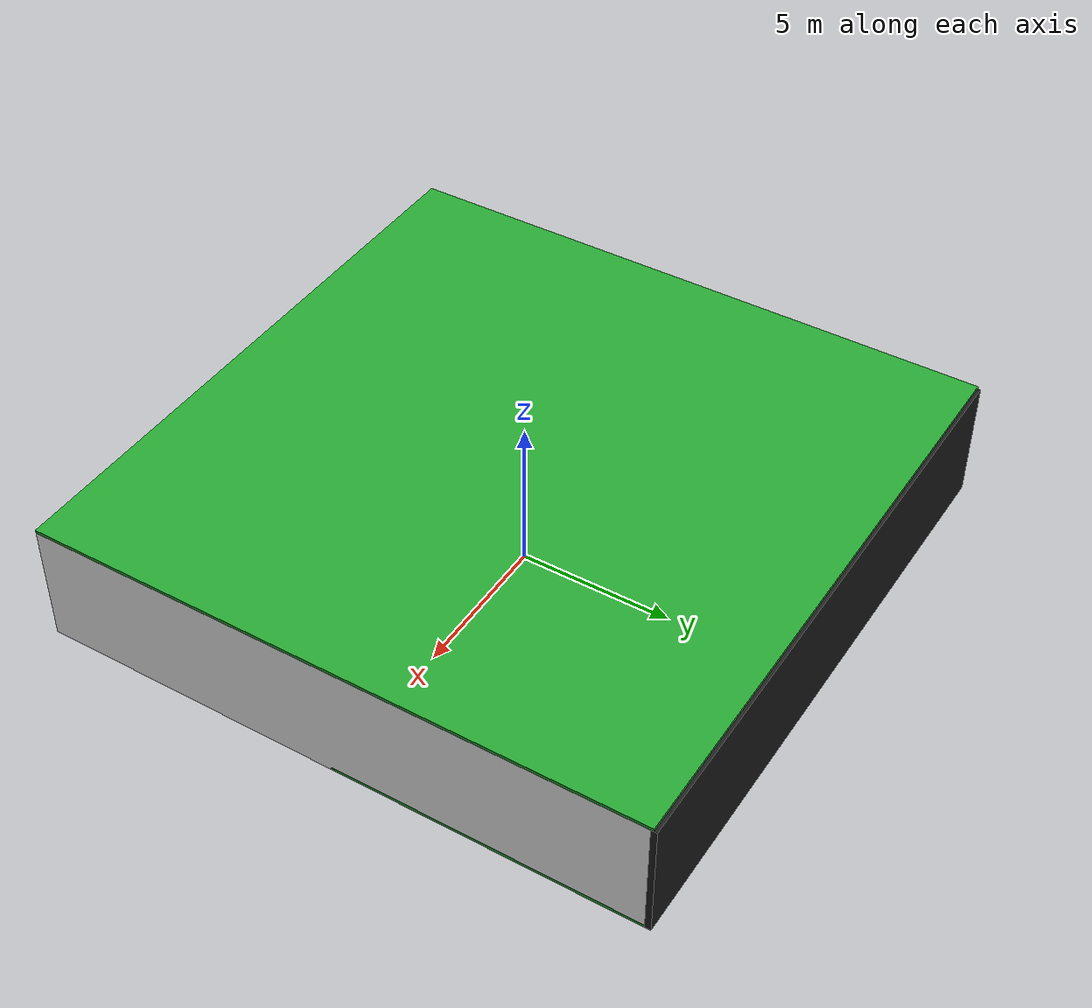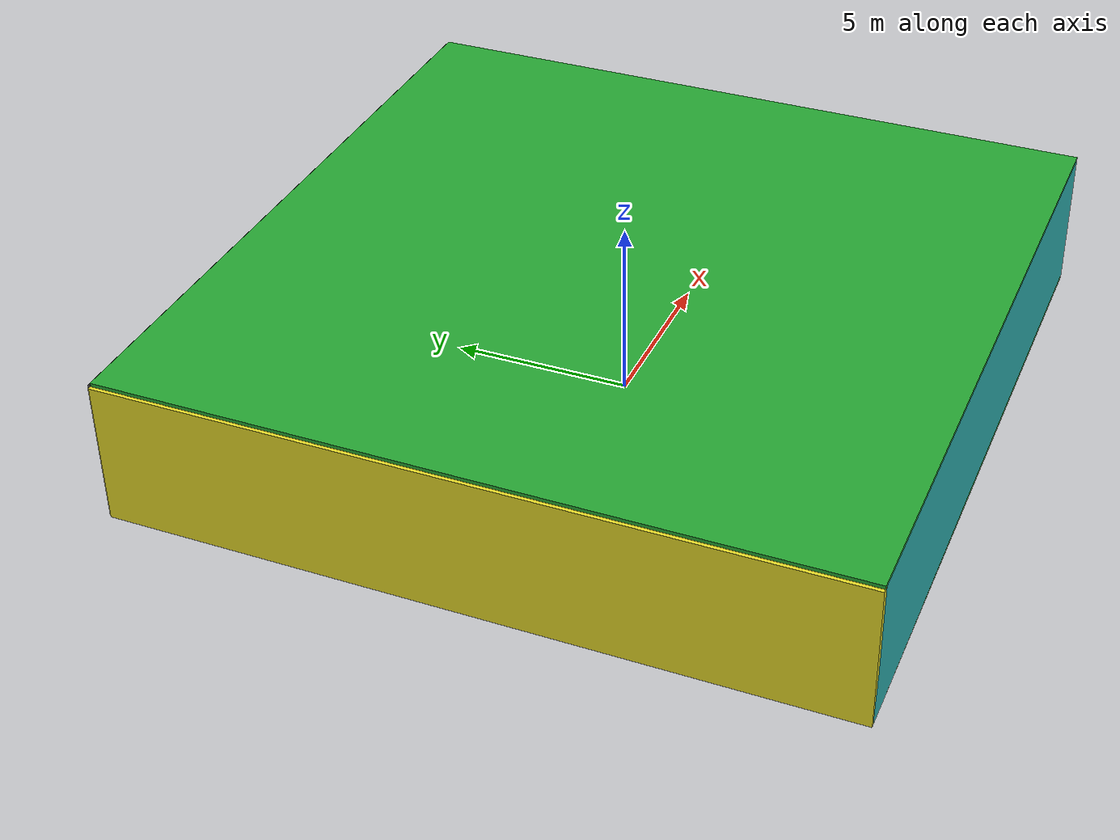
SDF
<sdf version="1.4">
 <world name="default">
  <physics type="ode">
   <max_step_size>0.001</max_step_size>
   <real_time_factor>1</real_time_factor>
   <real_time_update_rate>1000</real_time_update_rate>
   <gravity>0 0 -9.8</gravity>
  </physics>
  <scene><ambient>0.4 0.4 0.4 1</ambient><background>0.7 0.7 0.7 1</background><shadows>1</shadows></scene>
  <model name="Surrounding">
   <static>1</static>
   <link name="Ceiling">
    <collision name="Ceiling_Collision"><geometry><box><size>20 20 0.1</size></box></geometry></collision>
    <visual name="Ceiling_Visual">
     <geometry><box><size>20 20 0.1</size></box></geometry>
     <material>
      <script><uri>file://media/materials/scripts/gazebo.material</uri><name>Gazebo/GreenGlow</name></script>
     </material>
    </visual>
    <pose>0 0 4.05 0 0 0</pose>
   </link>
   <link name="Wall_South">
    <collision name="Wall_South_Collision">
     <geometry><box><size>20 0 4</size></box></geometry>
     <pose>0 0 2 0 -0 0</pose>
    </collision>
    <visual name="Wall_South_Visual">
     <pose>0 0 2 0 -0 0</pose>
     <geometry><box><size>20 0 4</size></box></geometry>
     <material>
      <script>
       <uri>file://media/materials/scripts/gazebo.material</uri>
       <name>Gazebo/TurquoiseGlowOutline</name>
      </script>
     </material>
    </visual>
    <velocity_decay><linear>0</linear><angular>0</angular></velocity_decay>
    <pose>0 -10 0 0 -0 0</pose>
   </link>
   <link name="Wall_East">
    <collision name="Wall_21_Collision">
     <geometry><box><size>20 0 4</size></box></geometry>
     <pose>0 0 2 0 -0 0</pose>
    </collision>
    <visual name="Wall_21_Visual">
     <pose>0 0 2 0 -0 0</pose>
     <geometry><box><size>20 0 4</size></box></geometry>
     <material>
      <script><uri>file://media/materials/scripts/gazebo.material</uri><name>Gazebo/WhiteGlow</name></script>
     </material>
    </visual>
    <velocity_decay><linear>0</linear><angular>0</angular></velocity_decay>
    <pose>10 0 0 0 -0 1.5708</pose>
   </link>
   <link name="Wall_North">
    <collision name="Wall_22_Collision">
     <geometry><box><size>20 0.2 4</size></box></geometry>
     <pose>0 0 2 0 -0 0</pose>
    </collision>
    <visual name="Wall_22_Visual">
     <pose>0 0 2 0 -0 0</pose>
     <geometry><box><size>20 0.2 4</size></box></geometry>
     <material>
      <script><uri>file://media/materials/scripts/gazebo.material</uri><name>Gazebo/FlatBlack</name></script>
     </material>
    </visual>
    <velocity_decay><linear>0</linear><angular>0</angular></velocity_decay>
    <pose>0 10 0 0 -0 0</pose>
   </link>
   <link name="Wall_West">
    <collision name="Wall_23_Collision">
     <geometry><box><size>20 0.2 4</size></box></geometry>
     <pose>0 0 2 0 -0 0</pose>
    </collision>
    <visual name="Wall_23_Visual">
     <pose>0 0 2 0 -0 0</pose>
     <geometry><box><size>20 0.2 4</size></box></geometry>
     <material>
      <script><uri>file://media/materials/scripts/gazebo.material</uri><name>Gazebo/YellowGlow</name></script>
     </material>
    </visual>
    <velocity_decay><linear>0</linear><angular>0</angular></velocity_decay>
    <pose>-10 0 0 0 0 -1.5708</pose>
   </link>
   <link name="Ground_link">
    <collision name="collision">
     <pose>0 0 .05 0 -0 0</pose>
     <geometry><box><size>20 20 0.1</size></box></geometry>
    </collision>
    <visual name="visual">
     <pose>0 0 .05 0 -0 0</pose>
     <geometry><box><size>20 20 0.1</size></box></geometry>
     <material>
      <script><uri>file://media/materials/scripts/gazebo.material</uri><name>Gazebo/GreenGlow</name></script>
     </material>
    </visual>
   </link>
   <static>1</static>
  </model>
  <spherical_coordinates>
   <surface_model>EARTH_WGS84</surface_model>
   <latitude_deg>0</latitude_deg>
   <longitude_deg>0</longitude_deg>
   <elevation>0</elevation>
   <heading_deg>0</heading_deg>
  </spherical_coordinates>
  <light name="lightball_0" type="diffuse">
   <diffuse>0.8 0.8 0.8 1</diffuse>
   <specular>0.2 0.2 0.2 1</specular>
   <attenuation>
    <range>100</range>
    <constant>0.7</constant>
    <linear>0.01</linear>
    <quadratic>0.001</quadratic>
   </attenuation>
   <direction>-0.5 0.1 -0.9</direction>
   <pose>7.17560349974 0.978050554071 1.86910059937 0 0 0</pose>
  </light>
  <light name="lightball_1" type="diffuse">
   <diffuse>0.8 0.8 0.8 1</diffuse>
   <specular>0.2 0.2 0.2 1</specular>
   <attenuation>
    <range>100</range>
    <constant>0.7</constant>
    <linear>0.01</linear>
    <quadratic>0.001</quadratic>
   </attenuation>
   <direction>-0.5 0.1 -0.9</direction>
   <pose>-0.853186014962 -5.44068626955 3.6104795693 0 0 0</pose>
  </light>
  <light name="lightball_2" type="diffuse">
   <diffuse>0.8 0.8 0.8 1</diffuse>
   <specular>0.2 0.2 0.2 1</specular>
   <attenuation>
    <range>100</range>
    <constant>0.7</constant>
    <linear>0.01</linear>
    <quadratic>0.001</quadratic>
   </attenuation>
   <direction>-0.5 0.1 -0.9</direction>
   <pose>-4.29874901024 6.30207562886 0.866871358363 0 0 0</pose>
  </light>
  <light name="lightball_3" type="diffuse">
   <diffuse>0.8 0.8 0.8 1</diffuse>
   <specular>0.2 0.2 0.2 1</specular>
   <attenuation>
    <range>100</range>
    <constant>0.7</constant>
    <linear>0.01</linear>
    <quadratic>0.001</quadratic>
   </attenuation>
   <direction>-0.5 0.1 -0.9</direction>
   <pose>4.77597902048 -0.499104803174 2.80812552945 0 0 0</pose>
  </light>
  <light name="lightball_4" type="diffuse">
   <diffuse>0.8 0.8 0.8 1</diffuse>
   <specular>0.2 0.2 0.2 1</specular>
   <attenuation>
    <range>100</range>
    <constant>0.7</constant>
    <linear>0.01</linear>
    <quadratic>0.001</quadratic>
   </attenuation>
   <direction>-0.5 0.1 -0.9</direction>
   <pose>-8.24093911704 -4.31546608553 3.85100647319 0 0 0</pose>
  </light>
  <light name="lightball_5" type="diffuse">
   <diffuse>0.8 0.8 0.8 1</diffuse>
   <specular>0.2 0.2 0.2 1</specular>
   <attenuation>
    <range>100</range>
    <constant>0.7</constant>
    <linear>0.01</linear>
    <quadratic>0.001</quadratic>
   </attenuation>
   <direction>-0.5 0.1 -0.9</direction>
   <pose>7.02869451344 9.92754924671 2.60607456742 0 0 0</pose>
  </light>
  <light name="lightball_6" type="diffuse">
   <diffuse>0.8 0.8 0.8 1</diffuse>
   <specular>0.2 0.2 0.2 1</specular>
   <attenuation>
    <range>100</range>
    <constant>0.7</constant>
    <linear>0.01</linear>
    <quadratic>0.001</quadratic>
   </attenuation>
   <direction>-0.5 0.1 -0.9</direction>
   <pose>-9.09051842471 0.69846526377 0.503232007743 0 0 0</pose>
  </light>
  <light name="lightball_7" type="diffuse">
   <diffuse>0.8 0.8 0.8 1</diffuse>
   <specular>0.2 0.2 0.2 1</specular>
   <attenuation>
    <range>100</range>
    <constant>0.7</constant>
    <linear>0.01</linear>
    <quadratic>0.001</quadratic>
   </attenuation>
   <direction>-0.5 0.1 -0.9</direction>
   <pose>4.28887223516 -2.42167235491 1.4799683065 0 0 0</pose>
  </light>
  <light name="lightball_8" type="diffuse">
   <diffuse>0.8 0.8 0.8 1</diffuse>
   <specular>0.2 0.2 0.2 1</specular>
   <attenuation>
    <range>100</range>
    <constant>0.7</constant>
    <linear>0.01</linear>
    <quadratic>0.001</quadratic>
   </attenuation>
   <direction>-0.5 0.1 -0.9</direction>
   <pose>1.23725429242 -2.58813550629 2.84846810279 0 0 0</pose>
  </light>
  <light name="lightball_9" type="diffuse">
   <diffuse>0.8 0.8 0.8 1</diffuse>
   <specular>0.2 0.2 0.2 1</specular>
   <attenuation>
    <range>100</range>
    <constant>0.7</constant>
    <linear>0.01</linear>
    <quadratic>0.001</quadratic>
   </attenuation>
   <direction>-0.5 0.1 -0.9</direction>
   <pose>-3.89384309298 -3.9480925197 1.14121538683 0 0 0</pose>
  </light>
  <include><uri>model://cabinet</uri><pose>-7.24246153368 -4.46791692592 0 0 0 1.68162556683</pose></include>
  <include><uri>model://table</uri><pose>-7.53753398124 1.55981582533 0 0 0 1.56642748536</pose></include>
  <include>
   <uri>model://construction_cone</uri>
   <pose>-1.32991752236 -6.72246990768 0 0 0 0.646831013311</pose>
  </include>
  <include><uri>model://cabinet</uri><pose>-1.51332112261 -4.40656208509 0 0 0 2.97888471749</pose></include>
  <include><uri>model://cabinet</uri><pose>1.05848830423 -4.37674342019 0 0 0 0.88068018203</pose></include>
  <include>
   <uri>model://textured_shapes</uri>
   <pose>4.24424240715 -1.93507316499 0 0 0 1.28481021514</pose>
  </include>
  <include><uri>model://table</uri><pose>4.81782194725 4.47614757335 0 0 0 3.08579795033</pose></include>
  <include><uri>model://cabinet</uri><pose>6.93257328433 7.61200569179 0 0 0 2.28457934174</pose></include>
 </world>
</sdf>

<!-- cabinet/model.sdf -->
<sdf version="1.5">
  <model name="cabinet">
    <static>true</static>
    <link name="cabinet_bottom_plate">
      <inertial>
        <pose>0 0 -1 0 0 0</pose>
        <inertia>
          <ixx>2.050000</ixx>
          <ixy>0</ixy>
          <ixz>0</ixz>
          <iyy>2.050000</iyy>
          <iyz>0</iyz>
          <izz>2.050000</izz>
        </inertia>
        <mass>25.000000</mass>
      </inertial>
      <collision name="cabinet_bottom_plate_geom">
        <pose>0 0 0.010000 0 0 0</pose>
        <geometry>
          <box>
            <size>0.450000 0.450000 0.020000</size>
          </box>
        </geometry>
      </collision>
      <visual name="cabinet_bottom_plate_geom_visual">
        <pose>0 0 0.010000 0 0 0</pose>
        <geometry>
          <box>
            <size>0.450000 0.450000 0.020000</size>
          </box>
        </geometry>
        <material>
          <script>
            <uri>model://media/materials/scripts/gazebo.material</uri>
            <name>Gazebo/Wood</name>
          </script>
        </material>
      </visual>
      <collision name="cabinet_bottom_plate_geom_cabinet_back_plate">
        <pose>0.235000 0 0.510000 0 0 0</pose>
        <geometry>
          <box>
            <size>0.020000 0.450000 1.020000</size>
          </box>
        </geometry>
      </collision>
      <visual name="cabinet_bottom_plate_geom_cabinet_back_plate_visual">
        <pose>0.235000 0 0.510000 0 0 0</pose>
        <geometry>
          <box>
            <size>0.020000 0.450000 1.020000</size>
          </box>
        </geometry>
        <material>
          <script>
            <uri>model://media/materials/scripts/gazebo.material</uri>
            <name>Gazebo/Wood</name>
          </script>
        </material>
      </visual>
      <collision name="cabinet_bottom_plate_geom_cabinet_left_plate">
        <pose>0 0.235000 0.510000 0 0 0</pose>
        <geometry>
          <box>
            <size>0.450000 0.020000 1.020000</size>
          </box>
        </geometry>
      </collision>
      <visual name="cabinet_bottom_plate_geom_cabinet_left_plate_visual">
        <pose>0 0.235000 0.510000 0 0 0</pose>
        <geometry>
          <box>
            <size>0.450000 0.020000 1.020000</size>
          </box>
        </geometry>
        <material>
          <script>
            <uri>model://media/materials/scripts/gazebo.material</uri>
            <name>Gazebo/Wood</name>
          </script>
        </material>
      </visual>
      <collision name="cabinet_bottom_plate_geom_cabinet_middle_plate">
        <pose>0 0 0.510000 0 0 0</pose>
        <geometry>
          <box>
            <size>0.450000 0.450000 0.020000</size>
          </box>
        </geometry>
      </collision>
      <visual name="cabinet_bottom_plate_geom_cabinet_middle_plate_visual">
        <pose>0 0 0.510000 0 0 0</pose>
        <geometry>
          <box>
            <size>0.450000 0.450000 0.020000</size>
          </box>
        </geometry>
        <material>
          <script>
            <uri>model://media/materials/scripts/gazebo.material</uri>
            <name>Gazebo/Wood</name>
          </script>
        </material>
      </visual>
      <collision name="cabinet_bottom_plate_geom_cabinet_right_plate">
        <pose>0 -0.235000 0.510000 0 0 0</pose>
        <geometry>
          <box>
            <size>0.450000 0.020000 1.020000</size>
          </box>
        </geometry>
      </collision>
      <visual name="cabinet_bottom_plate_geom_cabinet_right_plate_visual">
        <pose>0 -0.235000 0.510000 0 0 0</pose>
        <geometry>
          <box>
            <size>0.450000 0.020000 1.020000</size>
          </box>
        </geometry>
        <material>
          <script>
            <uri>model://media/materials/scripts/gazebo.material</uri>
            <name>Gazebo/Wood</name>
          </script>
        </material>
      </visual>
      <collision name="cabinet_bottom_plate_geom_cabinet_top_plate">
        <pose>0 0 1.010000 0 0 0</pose>
        <geometry>
          <box>
            <size>0.450000 0.450000 0.020000</size>
          </box>
        </geometry>
      </collision>
      <visual name="cabinet_bottom_plate_geom_cabinet_top_plate_visual">
        <pose>0 0 1.010000 0 0 0</pose>
        <geometry>
          <box>
            <size>0.450000 0.450000 0.020000</size>
          </box>
        </geometry>
        <material>
          <script>
            <uri>model://media/materials/scripts/gazebo.material</uri>
            <name>Gazebo/Wood</name>
          </script>
        </material>
      </visual>
    </link>
  </model>
</sdf>

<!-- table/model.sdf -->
<sdf version="1.5">
  <model name="table">
    <static>true</static>
    <link name="link">
      <collision name="surface">
        <pose>0 0 1.0 0 0 0</pose>
        <geometry>
          <box>
            <size>1.5 0.8 0.03</size>
          </box>
        </geometry>
        <surface>
          <friction>
            <ode>
              <mu>0.6</mu>
              <mu2>0.6</mu2>
            </ode>
          </friction>
        </surface>
      </collision>
      <visual name="visual1">
        <pose>0 0 1.0 0 0 0</pose>
        <geometry>
          <box>
            <size>1.5 0.8 0.03</size>
          </box>
        </geometry>
        <material>
          <script>
            <uri>model://media/materials/scripts/gazebo.material</uri>
            <name>Gazebo/Wood</name>
          </script>
        </material>
      </visual>
      <collision name="front_left_leg">
        <pose>0.68 0.38 0.5 0 0 0</pose>
        <geometry>
          <cylinder>
            <radius>0.02</radius>
            <length>1.0</length>
          </cylinder>
        </geometry>
      </collision>
      <visual name="front_left_leg">
        <pose>0.68 0.38 0.5 0 0 0</pose>
        <geometry>
          <cylinder>
            <radius>0.02</radius>
            <length>1.0</length>
          </cylinder>
        </geometry>
        <material>
          <script>
            <uri>model://media/materials/scripts/gazebo.material</uri>
            <name>Gazebo/Grey</name>
          </script>
        </material>
      </visual>
      <collision name="front_right_leg">
        <pose>0.68 -0.38 0.5 0 0 0</pose>
        <geometry>
          <cylinder>
            <radius>0.02</radius>
            <length>1.0</length>
          </cylinder>
        </geometry>
      </collision>
      <visual name="front_right_leg">
        <pose>0.68 -0.38 0.5 0 0 0</pose>
        <geometry>
          <cylinder>
            <radius>0.02</radius>
            <length>1.0</length>
          </cylinder>
        </geometry>
        <material>
          <script>
            <uri>model://media/materials/scripts/gazebo.material</uri>
            <name>Gazebo/Grey</name>
          </script>
        </material>
      </visual>
      <collision name="back_right_leg">
        <pose>-0.68 -0.38 0.5 0 0 0</pose>
        <geometry>
          <cylinder>
            <radius>0.02</radius>
            <length>1.0</length>
          </cylinder>
        </geometry>
      </collision>
      <visual name="back_right_leg">
        <pose>-0.68 -0.38 0.5 0 0 0</pose>
        <geometry>
          <cylinder>
            <radius>0.02</radius>
            <length>1.0</length>
          </cylinder>
        </geometry>
        <material>
          <script>
            <uri>model://media/materials/scripts/gazebo.material</uri>
            <name>Gazebo/Grey</name>
          </script>
        </material>
      </visual>
      <collision name="back_left_leg">
        <pose>-0.68 0.38 0.5 0 0 0</pose>
        <geometry>
          <cylinder>
            <radius>0.02</radius>
            <length>1.0</length>
          </cylinder>
        </geometry>
      </collision>
      <visual name="back_left_leg">
        <pose>-0.68 0.38 0.5 0 0 0</pose>
        <geometry>
          <cylinder>
            <radius>0.02</radius>
            <length>1.0</length>
          </cylinder>
        </geometry>
        <material>
          <script>
            <uri>model://media/materials/scripts/gazebo.material</uri>
            <name>Gazebo/Grey</name>
          </script>
        </material>
      </visual>
    </link>
  </model>
</sdf>

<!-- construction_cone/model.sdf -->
<sdf version="1.5">
  <model name="Construction Cone">
    <link name="link">
      <collision name="collision">
        <geometry>
          <mesh>
            <scale>10 10 10</scale>
            <uri>file://isr-testbed/construction_cone/meshes/construction_cone.dae</uri>
          </mesh>
        </geometry>
      </collision>
      <visual name="visual">
        <geometry>
          <mesh>
            <scale>10 10 10</scale>
            <uri>file://isr-testbed/construction_cone/meshes/construction_cone.dae</uri>
          </mesh>
        </geometry>
      </visual>
    </link>
  </model>
</sdf>

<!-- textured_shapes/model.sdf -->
<sdf version="1.6">
  <model name="textured_shapes">
    <pose>0 0 0.5 0 0 0</pose>
    <link name="box">
      <pose>0 -1.5 0 0 0 0</pose>
      <collision name="collision">
        <geometry>
          <box>
            <size>1 1 1</size>
          </box>
        </geometry>
      </collision>
      <visual name="visual">
        <geometry>
          <box>
            <size>1 1 1</size>
          </box>
        </geometry>
        <material>
          <script>
            <uri>model://../model_source/models/textured_shapes/materials/scripts</uri>
            <uri>model://../model_source/models/textured_shapes/materials/textures</uri>
            <name>TexturedShape/Squares</name>
          </script>
        </material>
      </visual>
    </link>
    <link name="sphere">
      <collision name="collision">
        <geometry>
          <sphere>
            <radius>0.5</radius>
          </sphere>
        </geometry>
      </collision>
      <visual name="visual">
        <geometry>
          <sphere>
            <radius>0.5</radius>
          </sphere>
        </geometry>
        <material>
          <script>
            <uri>model://../model_source/models/textured_shapes/materials/scripts</uri>
            <uri>model://../model_source/models/textured_shapes/materials/textures</uri>
            <name>TexturedShape/Squares</name>
          </script>
        </material>
      </visual>
    </link>
    <link name="cylinder">
      <pose>0 1.5 0 0 0 0</pose>
      <collision name="collision">
        <geometry>
          <cylinder>
            <radius>0.5</radius>
            <length>1</length>
          </cylinder>
        </geometry>
      </collision>
      <visual name="visual">
        <geometry>
          <cylinder>
            <radius>0.5</radius>
            <length>1</length>
          </cylinder>
        </geometry>
        <material>
          <script>
            <uri>model://../model_source/models/textured_shapes/materials/scripts</uri>
            <uri>model://../model_source/models/textured_shapes/materials/textures</uri>
            <name>TexturedShape/Squares</name>
          </script>
        </material>
      </visual>
    </link>
  </model>
</sdf>
